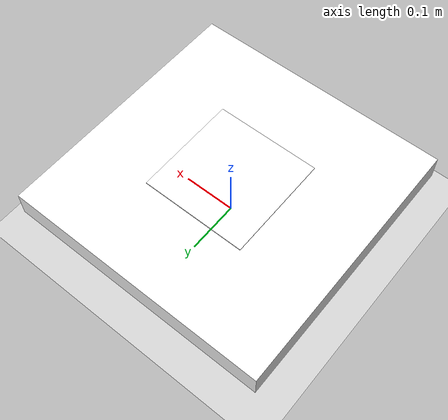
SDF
<?xml version="1.0" ?>
<sdf version="1.9">
  <world name="aruco_world">
    <physics name="1ms" type="ignored">
      <max_step_size>0.001</max_step_size>
      <real_time_factor>1.0</real_time_factor>
    </physics>

    <!-- Standard plugins -->
    <plugin filename="gz-sim-physics-system"
      name="gz::sim::systems::Physics">
    </plugin>
    <plugin filename="gz-sim-user-commands-system"
      name="gz::sim::systems::UserCommands">
    </plugin>
    <plugin filename="gz-sim-scene-broadcaster-system"
      name="gz::sim::systems::SceneBroadcaster">
    </plugin>
    <plugin filename="gz-sim-sensors-system"
      name="gz::sim::systems::Sensors">
      <render_engine>ogre2</render_engine>
    </plugin>

    <!-- Scene configuration -->
    <scene>
      <ambient>1.0 1.0 1.0</ambient>
      <background>0.8 0.8 0.8</background>
    </scene>

    <!-- Light -->
    <light type="directional" name="sun">
      <cast_shadows>true</cast_shadows>
      <pose>0 0 10 0 0 0</pose>
      <diffuse>0.8 0.8 0.8 1</diffuse>
      <specular>0.8 0.8 0.8 1</specular>
      <direction>-0.5 0.1 -0.9</direction>
    </light>

    <!-- Ground plane -->
    <model name="ground_plane">
      <static>true</static>
      <link name="link">
        <collision name="collision">
          <geometry>
            <plane>
              <normal>0 0 1</normal>
              <size>100 100</size>
            </plane>
          </geometry>
        </collision>
        <visual name="visual">
          <geometry>
            <plane>
              <normal>0 0 1</normal>
              <size>100 100</size>
            </plane>
          </geometry>
          <material>
            <ambient>0.8 0.8 0.8 1</ambient>
            <diffuse>0.8 0.8 0.8 1</diffuse>
            <specular>0.8 0.8 0.8 1</specular>
          </material>
        </visual>
      </link>
    </model>

    <!-- Include our ArUco marker -->
    <include>
      <uri>model://target_aruco</uri>
      <name>target_aruco</name>
      <pose>0 0 0.05 0 0 0</pose>
    </include>

    <!-- Keyboard controls for moving the ArUco marker -->
    <!-- Left arrow key -->
    <plugin filename="gz-sim-triggered-publisher-system"
            name="gz::sim::systems::TriggeredPublisher">
      <input type="gz.msgs.Int32" topic="/keyboard/keypress">
        <match field="data">16777234</match>
      </input>
      <output type="gz.msgs.Twist" topic="/model/target_aruco/cmd_vel">
        linear: {x: 0.0}, angular: {z: 0.5}
      </output>
    </plugin>

    <!-- Up arrow key (forward) -->
    <plugin filename="gz-sim-triggered-publisher-system"
            name="gz::sim::systems::TriggeredPublisher">
      <input type="gz.msgs.Int32" topic="/keyboard/keypress">
        <match field="data">16777235</match>
      </input>
      <output type="gz.msgs.Twist" topic="/model/target_aruco/cmd_vel">
        linear: {x: 0.5}, angular: {z: 0.0}
      </output>
    </plugin>

    <!-- Right arrow key -->
    <plugin filename="gz-sim-triggered-publisher-system"
            name="gz::sim::systems::TriggeredPublisher">
      <input type="gz.msgs.Int32" topic="/keyboard/keypress">
        <match field="data">16777236</match>
      </input>
      <output type="gz.msgs.Twist" topic="/model/target_aruco/cmd_vel">
        linear: {x: 0.0}, angular: {z: -0.5}
      </output>
    </plugin>

    <!-- Down arrow key (backward) -->
    <plugin filename="gz-sim-triggered-publisher-system"
            name="gz::sim::systems::TriggeredPublisher">
      <input type="gz.msgs.Int32" topic="/keyboard/keypress">
        <match field="data">16777237</match>
      </input>
      <output type="gz.msgs.Twist" topic="/model/target_aruco/cmd_vel">
        linear: {x: -0.5}, angular: {z: 0.0}
      </output>
    </plugin>
  </world>
</sdf>

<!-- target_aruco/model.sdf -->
<sdf version='1.9'>
  <model name='target_aruco'>
    <!-- Main link (white platform) -->
    <link name='base_link'>
      <inertial>
        <mass>1.0</mass>
        <inertia>
          <ixx>0.0001</ixx>
          <ixy>0</ixy>
          <ixz>0</ixz>
          <iyy>0.0001</iyy>
          <iyz>0</iyz>
          <izz>0.0001</izz>
        </inertia>
      </inertial>

      <visual name="base_visual">
        <pose>0 0 0.025 0 0 0</pose>
        <geometry>
          <box>
            <size>0.5 0.5 0.05</size>
          </box>
        </geometry>
        <material>
          <ambient>1 1 1 1</ambient>
          <diffuse>1 1 1 1</diffuse>
          <specular>1 1 1 1</specular>
        </material>
      </visual>

      <!-- ArUco marker visual -->
      <visual name='aruco_visual'>
        <pose>0 0 0.055 0 0 0</pose>
        <geometry>
          <box>
            <size>0.2 0.2 0.002</size>
          </box>
        </geometry>
        <material>
          <ambient>1 1 1 1</ambient>
          <diffuse>1 1 1 1</diffuse>
          <specular>0.5 0.5 0.5 1</specular>
          <pbr>
            <metal>
              <albedo_map>materials/textures/aruco_marker.png</albedo_map>
            </metal>
          </pbr>
        </material>
      </visual>

      <collision name='collision'>
        <pose>0 0 0.025 0 0 0</pose>
        <geometry>
          <box>
            <size>0.5 0.5 0.05</size>
          </box>
        </geometry>
      </collision>
    </link>

    <!-- Velocity control plugin -->
    <plugin
      filename="gz-sim-velocity-control-system"
      name="gz::sim::systems::VelocityControl">
      <initial_linear>0.01 0 0</initial_linear>
      <initial_angular>0 0 -0.1</initial_angular>
    </plugin>
  </model>
</sdf>
